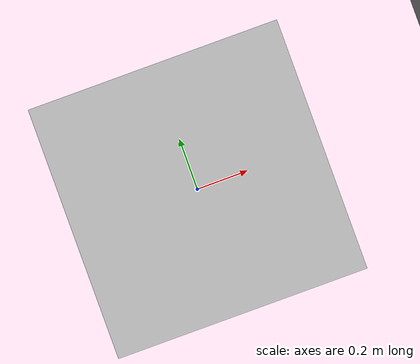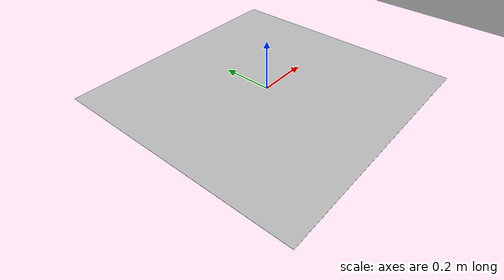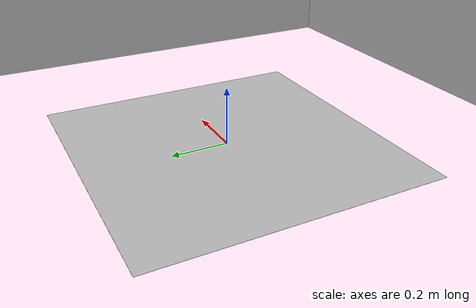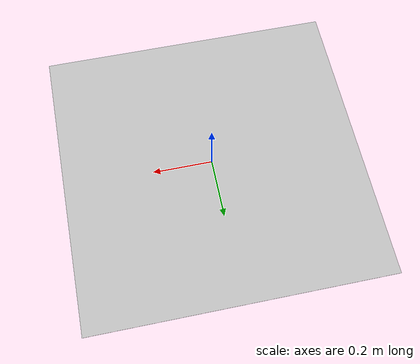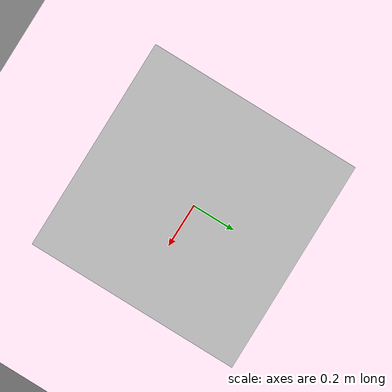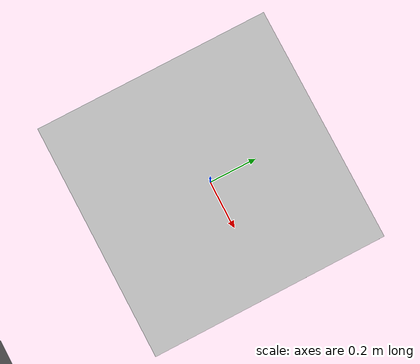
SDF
<?xml version="1.0" ?>
<sdf version="1.4">
  <world name="default">
    <scene>
      <ambient>0.500000 0.500000 0.500000 1.000000</ambient>
      <background>0.500000 0.500000 0.500000 1.000000</background>
      <shadows>0</shadows>
    </scene>
    <physics type="ode">
      <gravity>0.000000 0.000000 -9.800000</gravity>
      <ode>
        <solver>
          <type>quick</type>
          <iters>70</iters>
          <sor>1.300000</sor>
        </solver>
        <constraints>
          <cfm>0.000000</cfm>
          <erp>0.200000</erp>
          <contact_max_correcting_vel>100.000000</contact_max_correcting_vel>
          <contact_surface_layer>0.001000</contact_surface_layer>
        </constraints>
      </ode>
      <real_time_update_rate>1000.000000</real_time_update_rate>
      <max_step_size>0.002000</max_step_size>
    </physics>
    <model name="plane1_model">
      <link name="body">
        <collision name="geom_1">
          <geometry>
            <plane>
              <normal>0.000000 0.000000 1.000000</normal>
              <size>1.000000 1.000000</size>
            </plane>
          </geometry>
          <surface>
            <friction>
              <ode>
                <mu>100000000.000000</mu>
                <mu2>100000000.000000</mu2>
                <fdir1>0.000000 0.000000 0.000000</fdir1>
                <slip1>0.000000</slip1>
                <slip2>0.000000</slip2>
              </ode>
            </friction>
            <bounce>
              <restitution_coefficient>0.000000</restitution_coefficient>
              <threshold>1000000.000000</threshold>
            </bounce>
            <contact>
              <ode>
                <soft_cfm>0.000000</soft_cfm>
                <soft_erp>0.200000</soft_erp>
                <kp>10000000000.000000</kp>
                <kd>1.000000</kd>
                <max_vel>100.000000</max_vel>
                <min_depth>0.000100</min_depth>
              </ode>
            </contact>
          </surface>
        </collision>
        <visual name="visual_1">
          <geometry>
            <plane>
              <normal>0.000000 0.000000 1.000000</normal>
              <size>1.000000 1.000000</size>
            </plane>
          </geometry>
          <material>
            <script>
              <name>__default__</name>
            </script>
          </material>
          <cast_shadows>0</cast_shadows>
        </visual>
        <velocity_decay>
          <linear>0.000000</linear>
          <angular>0.000000</angular>
        </velocity_decay>
        <self_collide>0</self_collide>
        <kinematic>0</kinematic>
      </link>
      <static>1</static>
    </model>
    <model name="ens32_walls_model">
      <pose>1.000000 -1.000000 0.000000 0.000000 -0.000000 0.000000</pose>
      <link name="body">
        <collision name="geom_1">
          <geometry>
            <mesh>
              <uri>model://media/models/shademuch.dae</uri>
            </mesh>
          </geometry>
          <surface>
            <bounce />
            <friction>
              <ode />
            </friction>
            <contact>
              <ode />
            </contact>
          </surface>
        </collision>
        <visual name="visual_1">
          <geometry>
            <mesh>
              <uri>model://media/models/shademuch.dae</uri>
            </mesh>
          </geometry>
          <material>
            <script>
              <name>__default__</name>
            </script>
          </material>
          <cast_shadows>0</cast_shadows>
        </visual>
        <velocity_decay>
          <linear>0.000000</linear>
          <angular>0.000000</angular>
        </velocity_decay>
        <self_collide>0</self_collide>
        <kinematic>0</kinematic>
      </link>
      <static>1</static>
    </model>
    <light name="my_light_01" type="directional">
      <pose>0.000000 0.000000 30.000000 0.000000 -0.000000 0.000000</pose>
      <diffuse>0.900000 0.900000 0.900000 1.000000</diffuse>
      <specular>0.600000 0.600000 0.600000 1.000000</specular>
      <attenuation>
        <range>20.000000</range>
      </attenuation>
      <direction>0.000000 0.000000 -1.000000</direction>
      <cast_shadows>0</cast_shadows>
    </light>
    <light name="my_light_02" type="directional">
      <pose>0.000000 0.000000 30.000000 0.000000 -0.000000 0.000000</pose>
      <diffuse>0.900000 0.900000 0.900000 1.000000</diffuse>
      <specular>0.600000 0.600000 0.600000 1.000000</specular>
      <attenuation>
        <range>20.000000</range>
      </attenuation>
      <direction>-1.000000 0.000000 0.000000</direction>
      <cast_shadows>0</cast_shadows>
    </light>
    <light name="my_light_03" type="directional">
      <pose>0.000000 0.000000 30.000000 0.000000 -0.000000 0.000000</pose>
      <diffuse>0.900000 0.900000 0.900000 1.000000</diffuse>
      <specular>0.600000 0.600000 0.600000 1.000000</specular>
      <attenuation>
        <range>20.000000</range>
      </attenuation>
      <direction>0.000000 -1.000000 0.000000</direction>
      <cast_shadows>0</cast_shadows>
    </light>
    <light name="my_light_04" type="directional">
      <pose>0.000000 0.000000 30.000000 0.000000 -0.000000 0.000000</pose>
      <diffuse>0.900000 0.900000 0.900000 1.000000</diffuse>
      <specular>0.600000 0.600000 0.600000 1.000000</specular>
      <attenuation>
        <range>20.000000</range>
      </attenuation>
      <direction>0.000000 0.000000 1.000000</direction>
      <cast_shadows>0</cast_shadows>
    </light>
    <light name="my_light_05" type="directional">
      <pose>0.000000 0.000000 30.000000 0.000000 -0.000000 0.000000</pose>
      <diffuse>0.900000 0.900000 0.900000 1.000000</diffuse>
      <specular>0.600000 0.600000 0.600000 1.000000</specular>
      <attenuation>
        <range>20.000000</range>
      </attenuation>
      <direction>1.000000 0.000000 0.000000</direction>
      <cast_shadows>0</cast_shadows>
    </light>
    <light name="my_light_06" type="directional">
      <pose>0.000000 0.000000 30.000000 0.000000 -0.000000 0.000000</pose>
      <diffuse>0.900000 0.900000 0.900000 1.000000</diffuse>
      <specular>0.600000 0.600000 0.600000 1.000000</specular>
      <attenuation>
        <range>20.000000</range>
      </attenuation>
      <direction>0.000000 1.000000 0.000000</direction>
      <cast_shadows>0</cast_shadows>
    </light>
  </world>
</sdf>
